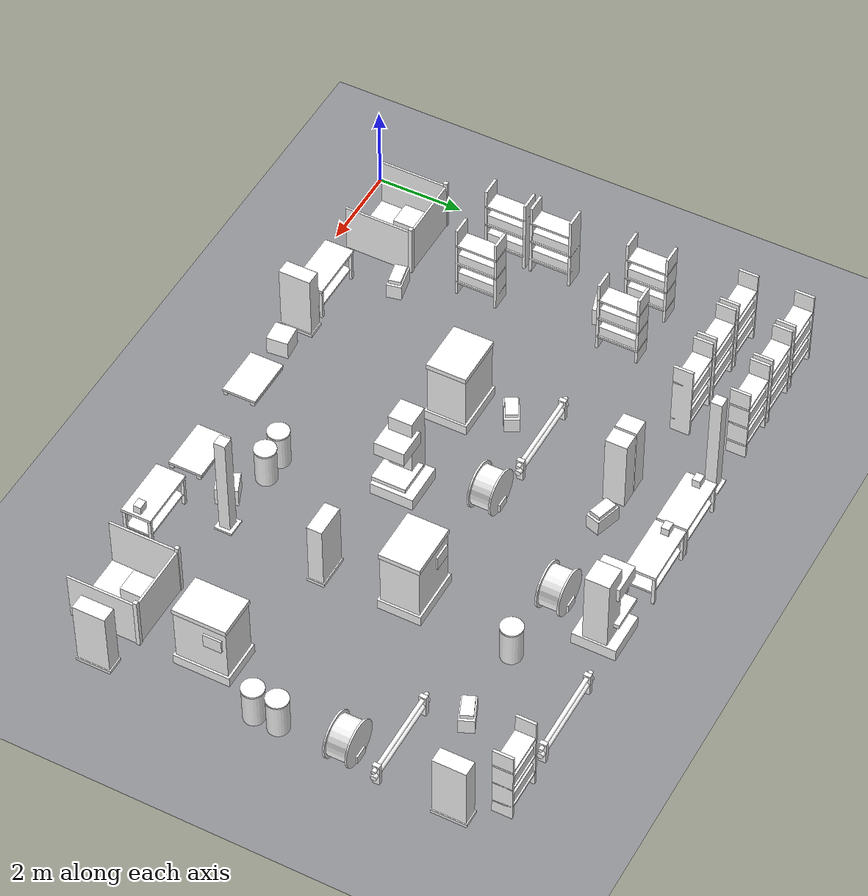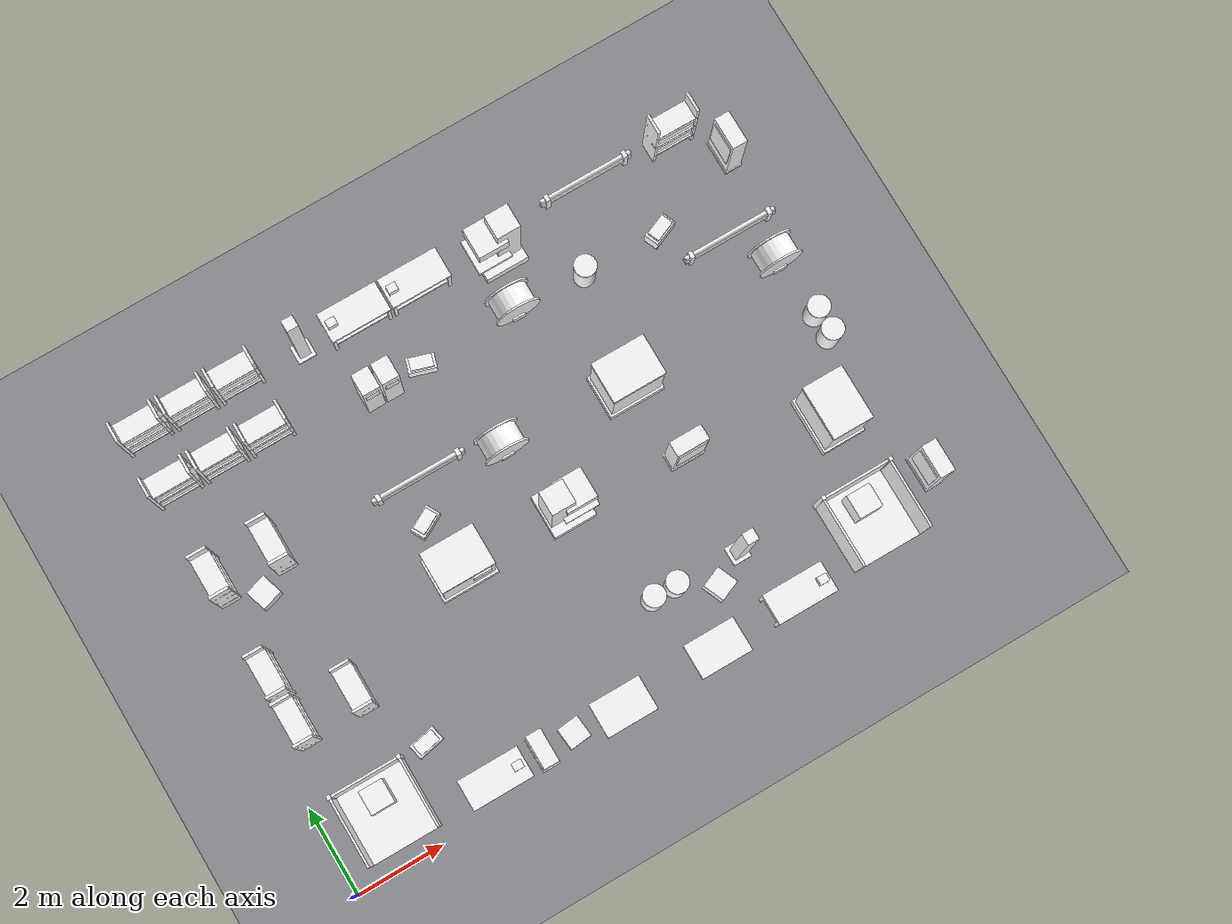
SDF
<sdf version="1.10">
 <world name="hexapod_facility">
  <model name="ground">
   <static>true</static>
   <link name="plane">
    <visual name="vis">
     <geometry><plane><normal>0 0 1</normal><size>60 60</size></plane></geometry>
     <material><diffuse>0.55 0.56 0.58 1</diffuse></material>
    </visual>
   </link>
  </model>
  <include><uri>model://machine_cnc</uri><name>machine_cnc_0</name><pose>5.15 4.75 0 0 0 0.0</pose></include>
  <include>
   <uri>model://machine_press</uri>
   <name>machine_press_1</name>
   <pose>7.65 4.75 0 0 0 0.0</pose>
  </include>
  <include>
   <uri>model://control_panel</uri>
   <name>control_panel_2</name>
   <pose>10.4 4.45 0 0 0 0.0</pose>
  </include>
  <include><uri>model://machine_cnc</uri><name>machine_cnc_3</name><pose>10.1 6.35 0 0 0 3.1416</pose></include>
  <include><uri>model://pipe_run</uri><name>pipe_run_4</name><pose>5.35 6.8 0 0 0 0.0</pose></include>
  <include><uri>model://cable_reel</uri><name>cable_reel_5</name><pose>7.2 6.55 0 0 0 0.0</pose></include>
  <include><uri>model://toolbox</uri><name>toolbox_6</name><pose>5.0 5.9 0 0 0 0.5</pose></include>
  <include><uri>model://robot_cell</uri><name>robot_cell_7</name><pose>1.35 1.15 0 0 0 0.0</pose></include>
  <include><uri>model://workbench</uri><name>workbench_8</name><pose>3.6 0.6 0 0 0 0.0</pose></include>
  <include>
   <uri>model://control_panel</uri>
   <name>control_panel_9</name>
   <pose>4.7 0.62 0 0 0 -1.5708</pose>
  </include>
  <include><uri>model://toolbox</uri><name>toolbox_10</name><pose>2.75 1.95 0 0 0 0.2</pose></include>
  <include><uri>model://pallet</uri><name>pallet_11</name><pose>6.6 0.55 0 0 0 0.0</pose></include>
  <include><uri>model://crate</uri><name>crate_12</name><pose>5.45 0.6 0 0 0 0.1</pose></include>
  <include><uri>model://pallet</uri><name>pallet_13</name><pose>8.9 0.6 0 0 0 0.0</pose></include>
  <include><uri>model://crate</uri><name>crate_14</name><pose>9.6 1.7 0 0 0 0.4</pose></include>
  <include><uri>model://barrel</uri><name>barrel_15</name><pose>8.25 2.15 0 0 0 0.0</pose></include>
  <include><uri>model://barrel</uri><name>barrel_16</name><pose>8.8 2.15 0 0 0 0.0</pose></include>
  <include><uri>model://robot_cell</uri><name>robot_cell_17</name><pose>13.0 1.3 0 0 0 0.0</pose></include>
  <include><uri>model://workbench</uri><name>workbench_18</name><pose>10.85 0.7 0 0 0 0.0</pose></include>
  <include><uri>model://pillar</uri><name>pillar_19</name><pose>10.3 2.1 0 0 0 0.0</pose></include>
  <include>
   <uri>model://control_panel</uri>
   <name>control_panel_20</name>
   <pose>14.55 1.6 0 0 0 -1.5708</pose>
  </include>
  <include><uri>model://shelf_unit</uri><name>shelf_unit_21</name><pose>0.9 9.15 0 0 0 0.0</pose></include>
  <include><uri>model://shelf_unit</uri><name>shelf_unit_22</name><pose>2.0 9.15 0 0 0 0.0</pose></include>
  <include><uri>model://shelf_unit</uri><name>shelf_unit_23</name><pose>3.1 9.15 0 0 0 0.0</pose></include>
  <include><uri>model://shelf_unit</uri><name>shelf_unit_24</name><pose>0.9 10.45 0 0 0 3.1416</pose></include>
  <include><uri>model://shelf_unit</uri><name>shelf_unit_25</name><pose>2.0 10.45 0 0 0 3.1416</pose></include>
  <include><uri>model://shelf_unit</uri><name>shelf_unit_26</name><pose>3.1 10.45 0 0 0 3.1416</pose></include>
  <include><uri>model://pillar</uri><name>pillar_27</name><pose>4.6 10.4 0 0 0 0.0</pose></include>
  <include><uri>model://workbench</uri><name>workbench_28</name><pose>5.9 10.4 0 0 0 3.1416</pose></include>
  <include><uri>model://workbench</uri><name>workbench_29</name><pose>7.35 10.4 0 0 0 3.1416</pose></include>
  <include>
   <uri>model://machine_press</uri>
   <name>machine_press_30</name>
   <pose>9.2 10.2 0 0 0 3.1416</pose>
  </include>
  <include><uri>model://locker</uri><name>locker_31</name><pose>5.35 8.8 0 0 0 0.0</pose></include>
  <include><uri>model://locker</uri><name>locker_32</name><pose>5.8 8.8 0 0 0 0.0</pose></include>
  <include><uri>model://toolbox</uri><name>toolbox_33</name><pose>6.6 8.85 0 0 0 -0.3</pose></include>
  <include><uri>model://cable_reel</uri><name>cable_reel_34</name><pose>8.9 9.0 0 0 0 0.0</pose></include>
  <include><uri>model://pipe_run</uri><name>pipe_run_35</name><pose>11.6 10.55 0 0 0 0.0</pose></include>
  <include>
   <uri>model://control_panel</uri>
   <name>control_panel_36</name>
   <pose>14.5 9.6 0 0 0 -1.5708</pose>
  </include>
  <include><uri>model://barrel</uri><name>barrel_37</name><pose>10.55 8.8 0 0 0 0.0</pose></include>
  <include><uri>model://shelf_unit</uri><name>shelf_unit_38</name><pose>13.6 10.45 0 0 0 3.1416</pose></include>
  <include><uri>model://toolbox</uri><name>toolbox_39</name><pose>12.4 8.8 0 0 0 0.4</pose></include>
  <include><uri>model://shelf_unit</uri><name>shelf_unit_40</name><pose>0.7 3.6 0 0 0 1.5708</pose></include>
  <include><uri>model://shelf_unit</uri><name>shelf_unit_41</name><pose>0.7 4.7 0 0 0 1.5708</pose></include>
  <include><uri>model://shelf_unit</uri><name>shelf_unit_42</name><pose>0.7 7.0 0 0 0 1.5708</pose></include>
  <include><uri>model://shelf_unit</uri><name>shelf_unit_43</name><pose>2.05 3.6 0 0 0 -1.5708</pose></include>
  <include><uri>model://shelf_unit</uri><name>shelf_unit_44</name><pose>2.05 7.0 0 0 0 -1.5708</pose></include>
  <include><uri>model://crate</uri><name>crate_45</name><pose>1.4 6.3 0 0 0 0.3</pose></include>
  <include><uri>model://machine_cnc</uri><name>machine_cnc_46</name><pose>13.4 3.6 0 0 0 1.5708</pose></include>
  <include><uri>model://barrel</uri><name>barrel_47</name><pose>14.3 5.05 0 0 0 0.0</pose></include>
  <include><uri>model://barrel</uri><name>barrel_48</name><pose>14.3 5.6 0 0 0 0.0</pose></include>
  <include><uri>model://cable_reel</uri><name>cable_reel_49</name><pose>14.2 7.1 0 0 0 0.0</pose></include>
  <include><uri>model://pipe_run</uri><name>pipe_run_50</name><pose>13.6 7.95 0 0 0 0.0</pose></include>
 </world>
</sdf>
